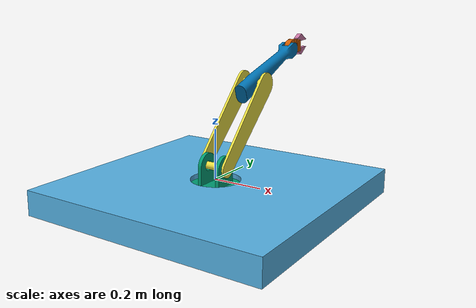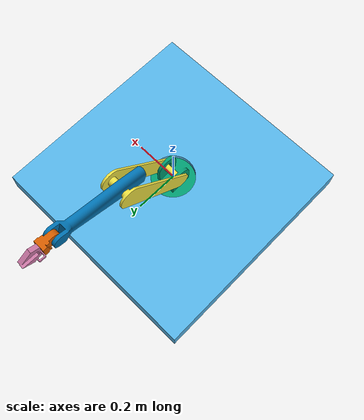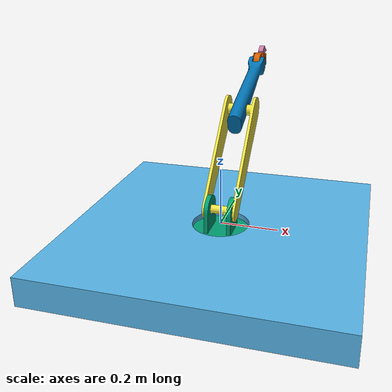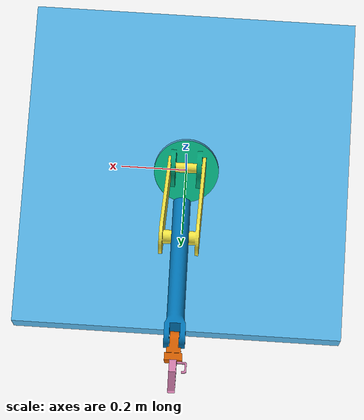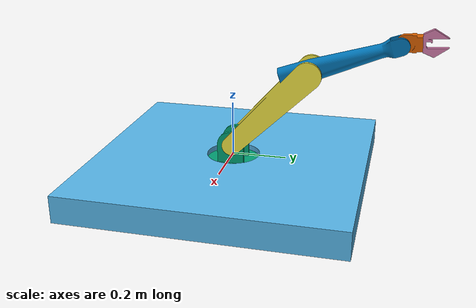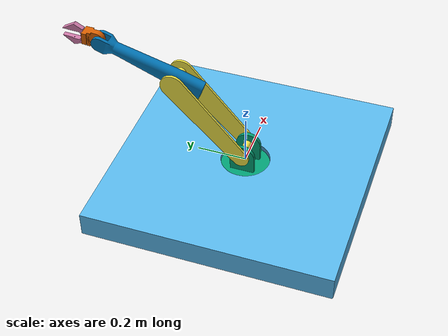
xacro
<?xml version="1.0"?>

<robot xmlns:xacro="http://www.ros.org/wiki/xacro" name="robotic_arm">

    <xacro:property name="PI" value="3.14"/>
    <xacro:property name="effort" value="0.30"/>
    <xacro:property name="velocity" value="0.10"/>

    <xacro:macro name="default_inertial" params="mass">
        <inertial>
            <mass value="${mass}"/>
            <inertia ixx="1" ixy="0" ixz="0" iyy="1" iyz="0" izz="1"/>
        </inertial>
    </xacro:macro>

    <xacro:macro name="default_transmission" params="number">
        <transmission name="transmission${number}">
            <type>
                transmission_interface/SimpleTransmission
            </type>
            <joint name="joint${number}">
                <hardwareInterface>hardware_interface/PositionJointInterface</hardwareInterface>
            </joint>
            <actuator name="motor${number}">
                <hardwareInterface>hardware_interface/PositionJointInterface</hardwareInterface>
                <mechanicalReduction>1</mechanicalReduction>
            </actuator>
        </transmission>
    </xacro:macro>

    <link name="world"/>

    <link name="base">
        <xacro:default_inertial mass="0.10"/>
        <visual>
            <origin rpy="1.57 0 0" xyz="-0.5 0.5 -0.1"/>
            <geometry>
                <mesh filename="package://robot_arm_description/mesh/base.STL" scale="0.001 0.001 0.001"/>

            </geometry>
        </visual>
        <collision>
            <origin rpy="1.57 0 0" xyz="-0.5 0.5 -0.1"/>
            <geometry>
                <mesh filename="package://robot_arm_description/mesh/base.STL" scale="0.001 0.001 0.001"/>

            </geometry>
        </collision>
    </link>

    <link name="base2">
        <xacro:default_inertial mass="0.01"/>
        <visual>
            <origin rpy="1.57 0 0" xyz="-0.1 0.1 -0.1"/>
            <geometry>
                <mesh filename="package://robot_arm_description/mesh/fg base.STL" scale="0.001 0.001 0.001"/>

            </geometry>
        </visual>
        <collision>
            <origin rpy="1.57 0 0" xyz="-0.1 0.1 -0.1"/>
            <geometry>
                <mesh filename="package://robot_arm_description/mesh/fg base.STL" scale="0.001 0.001 0.001"/>

            </geometry>
        </collision>
    </link>

    <link name="arm1">
        <xacro:default_inertial mass="0.1"/>
        <visual>
            <origin rpy="${PI/2} 0 ${PI/1.6}" xyz="-0.27 -0.37 -0.53"/>
            <geometry>
                <mesh filename="package://robot_arm_description/mesh/arm1.STL" scale="0.001 0.001 0.001"/>

            </geometry>
        </visual>
        <collision>
            <origin rpy="${PI/2} 0 ${PI/1.6}" xyz="-0.27 -0.37 -0.53"/>
            <geometry>
                <mesh filename="package://robot_arm_description/mesh/arm1.STL" scale="0.001 0.001 0.001"/>

            </geometry>
        </collision>
    </link>

    <link name="arm2">
        <xacro:default_inertial mass="0.01"/>
        <visual>
            <origin rpy="1.57 0 ${PI/1.6}" xyz="-0.27 -0.53 -0.63"/>
            <geometry>
                <mesh filename="package://robot_arm_description/mesh/limb2.STL" scale="0.001 0.001 0.001"/>

            </geometry>
        </visual>
        <collision>
            <origin rpy="1.57 0 ${PI/1.6}" xyz="-0.27 -0.53 -0.63"/>
            <geometry>
                <mesh filename="package://robot_arm_description/mesh/limb2.STL" scale="0.001 0.001 0.001"/>

            </geometry>
        </collision>
    </link>

    <link name="gripper_arm_join">
        <xacro:default_inertial mass="0.005"/>
        <visual>
            <origin rpy="1.57 0 0" xyz="-0.03 0.02 -0.02"/>
            <geometry>
                <mesh filename="package://robot_arm_description/mesh/modle grip.STL" scale="0.001 0.001 0.001"/>

            </geometry>
        </visual>
        <collision>
            <origin rpy="1.57 0 0" xyz="-0.03 0.02 -0.02"/>
            <geometry>
                <mesh filename="package://robot_arm_description/mesh/modle grip.STL" scale="0.001 0.001 0.001"/>

            </geometry>
        </collision>
    </link>

    <link name="gripper">
        <xacro:default_inertial mass="0.002"/>
        <visual>
            <origin rpy="0 -1.57 1.57" xyz="0.01 0.0473 0.010"/>
            <geometry>
                <mesh filename="package://robot_arm_description/mesh/grip.STL" scale="0.001 0.001 0.001"/>

            </geometry>
        </visual>
        <collision>
            <origin rpy="0 -1.57 1.57" xyz="0.01 0.0473 0.010"/>
            <geometry>
                <mesh filename="package://robot_arm_description/mesh/grip.STL" scale="0.001 0.001 0.001"/>

            </geometry>
        </collision>
    </link>

    <joint name="virtual_joint" type="fixed">
        <parent link="world"/>
        <child link="base"/>
        <origin rpy="0 0 0" xyz="0 0 0.0"/>
    </joint>

    <joint name="joint1" type="revolute">
        <parent link="base"/>
        <child link="base2"/>
        <origin rpy="0 0 0" xyz="0 0 0.05"/>
        <axis xyz="0 0 1"/>
        <limit lower="-${PI/2}" upper="${PI/2}" effort="${effort}" velocity="${velocity}"/>
    </joint>

    <joint name="joint2" type="revolute">
        <parent link="base2"/>
        <child link="arm1"/>
        <origin rpy="0 0 0" xyz="0 0 0"/>
        <axis xyz="1 0 0"/>
        <limit lower="${PI/1.5}" upper="${PI/3}" effort="${effort}" velocity="${velocity}"/>
    </joint>

    <joint name="joint3" type="revolute">
        <parent link="arm1"/>
        <child link="arm2"/>
        <origin rpy="0 0 0" xyz="0 0.29 -0.28"/>
        <axis xyz="1 0 0"/>
        <limit lower="2.37" upper="1.02" effort="${effort}" velocity="${velocity}"/>
    </joint>

    <joint name="joint4" type="revolute">
        <parent link="arm2"/>
        <child link="gripper_arm_join"/>
        <origin rpy="0 0 0" xyz="0 -0.325 -0.07"/>
        <axis xyz="1 0 0"/>
        <limit lower="2.5" upper="0.5" effort="${effort}" velocity="${velocity}"/>
    </joint>

    <joint name="joint5" type="revolute">
        <parent link="gripper_arm_join"/>
        <child link="gripper"/>
        <origin rpy="0 0 0" xyz="-0.005 -0.01 0.05"/>
        <axis xyz="0 0 1"/>
        <limit lower="${-PI}" upper="${PI}" effort="${effort}" velocity="${velocity}"/>
    </joint>

    <xacro:default_transmission number="1"/>
    <xacro:default_transmission number="2"/>
    <xacro:default_transmission number="3"/>
    <xacro:default_transmission number="4"/>
    <xacro:default_transmission number="5"/>

    <gazebo>
        <plugin name="gazebo_ros_control" filename="libgazebo_ros_control.so">
            <robotNamespace>/robot_arm</robotNamespace>
            <robotSimType>gazebo_ros_control/DefaultRobotHWSim</robotSimType>
            <legacyModeNS>true</legacyModeNS>
        </plugin>
    </gazebo>
</robot>
